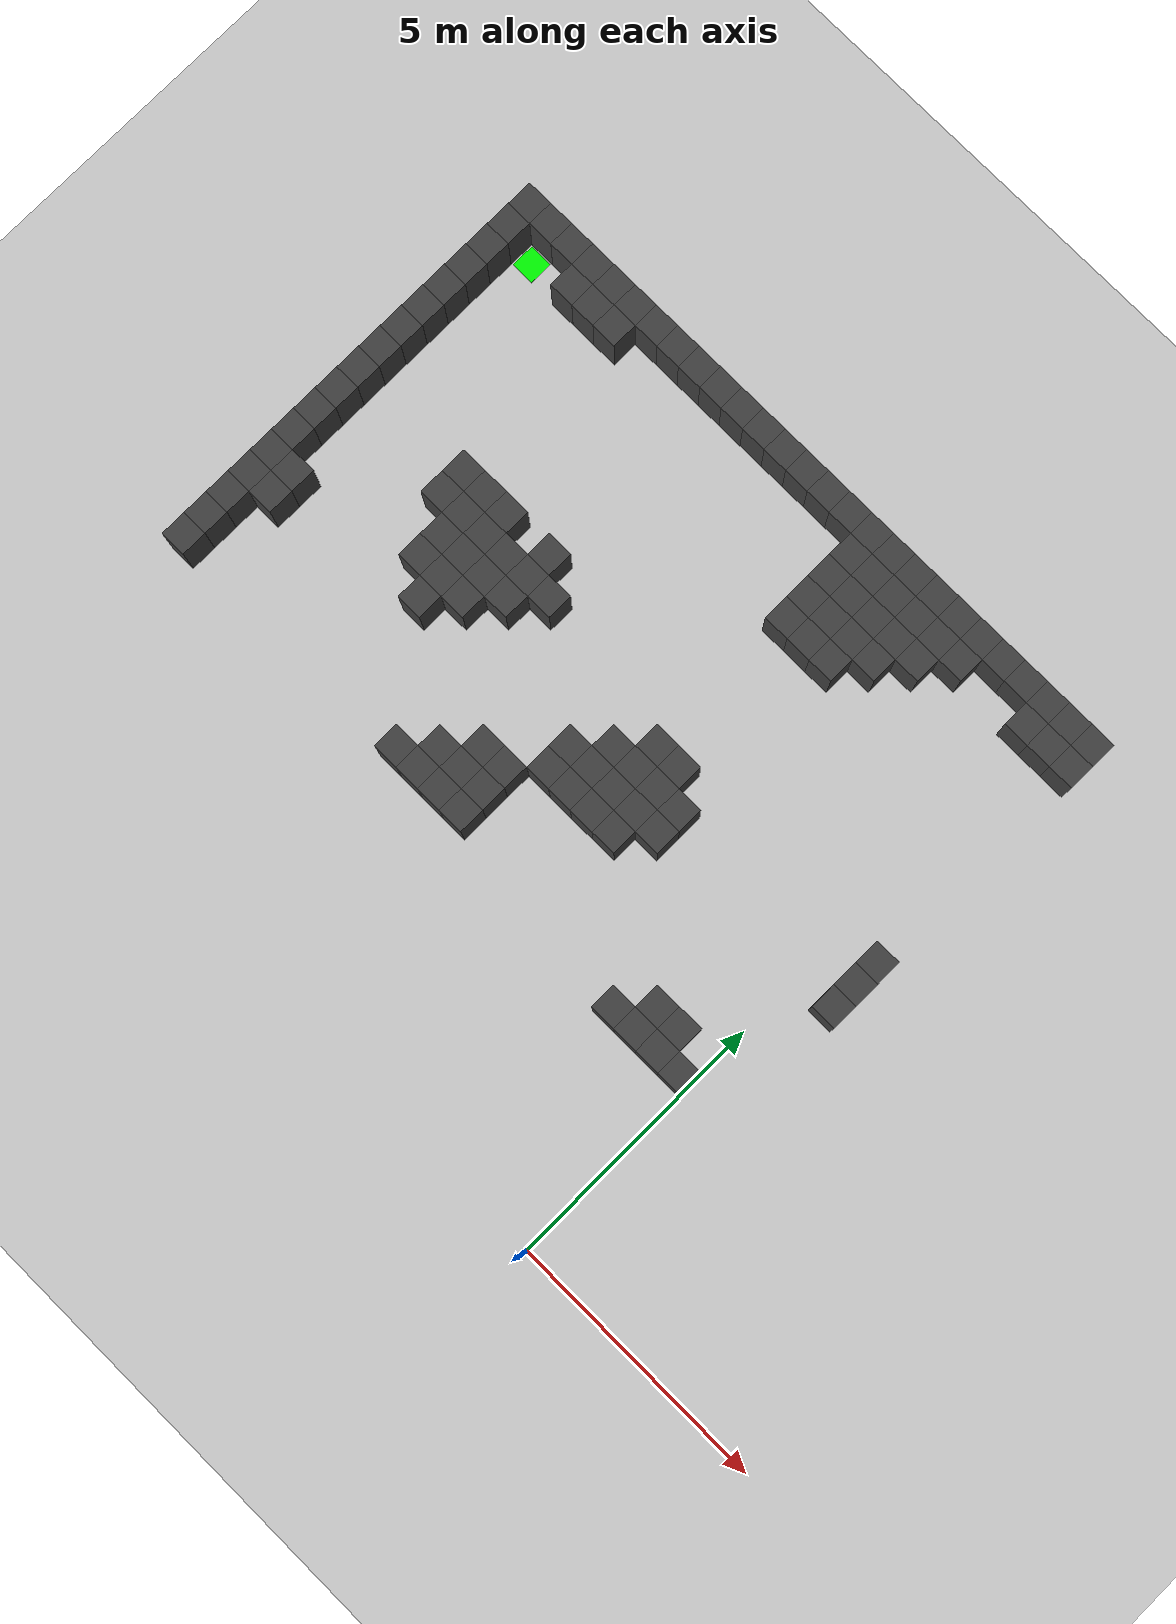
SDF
<sdf version="1.7">
 <world name="map_8661">
  <model name="ground_plane">
   <static>true</static>
   <link name="link">
    <collision name="collision">
     <geometry><plane><normal>0 0 1</normal><size>200 200</size></plane></geometry>
    </collision>
    <visual name="visual">
     <geometry><plane><normal>0 0 1</normal><size>200 200</size></plane></geometry>
     <material><ambient>0.8 0.8 0.8 1</ambient><diffuse>0.8 0.8 0.8 1</diffuse></material>
    </visual>
   </link>
  </model>
  <model name="maze_environment">
   <static>true</static>
   <link name="wall_0">
    <pose>-12.250 12.250 0.500 0 0 0</pose>
    <collision name="col"><geometry><box><size>0.5 0.5 1.0</size></box></geometry></collision>
    <visual name="vis">
     <geometry><box><size>0.5 0.5 1.0</size></box></geometry>
     <material><ambient>0.15 0.15 0.15 1</ambient><diffuse>0.25 0.25 0.25 1</diffuse></material>
    </visual>
   </link>
   <link name="wall_1">
    <pose>-11.750 12.250 0.500 0 0 0</pose>
    <collision name="col"><geometry><box><size>0.5 0.5 1.0</size></box></geometry></collision>
    <visual name="vis">
     <geometry><box><size>0.5 0.5 1.0</size></box></geometry>
     <material><ambient>0.15 0.15 0.15 1</ambient><diffuse>0.25 0.25 0.25 1</diffuse></material>
    </visual>
   </link>
   <link name="wall_2">
    <pose>-11.250 12.250 0.500 0 0 0</pose>
    <collision name="col"><geometry><box><size>0.5 0.5 1.0</size></box></geometry></collision>
    <visual name="vis">
     <geometry><box><size>0.5 0.5 1.0</size></box></geometry>
     <material><ambient>0.15 0.15 0.15 1</ambient><diffuse>0.25 0.25 0.25 1</diffuse></material>
    </visual>
   </link>
   <link name="wall_3">
    <pose>-10.750 12.250 0.500 0 0 0</pose>
    <collision name="col"><geometry><box><size>0.5 0.5 1.0</size></box></geometry></collision>
    <visual name="vis">
     <geometry><box><size>0.5 0.5 1.0</size></box></geometry>
     <material><ambient>0.15 0.15 0.15 1</ambient><diffuse>0.25 0.25 0.25 1</diffuse></material>
    </visual>
   </link>
   <link name="wall_4">
    <pose>-10.250 12.250 0.500 0 0 0</pose>
    <collision name="col"><geometry><box><size>0.5 0.5 1.0</size></box></geometry></collision>
    <visual name="vis">
     <geometry><box><size>0.5 0.5 1.0</size></box></geometry>
     <material><ambient>0.15 0.15 0.15 1</ambient><diffuse>0.25 0.25 0.25 1</diffuse></material>
    </visual>
   </link>
   <link name="wall_5">
    <pose>-9.750 12.250 0.500 0 0 0</pose>
    <collision name="col"><geometry><box><size>0.5 0.5 1.0</size></box></geometry></collision>
    <visual name="vis">
     <geometry><box><size>0.5 0.5 1.0</size></box></geometry>
     <material><ambient>0.15 0.15 0.15 1</ambient><diffuse>0.25 0.25 0.25 1</diffuse></material>
    </visual>
   </link>
   <link name="wall_6">
    <pose>-9.250 12.250 0.500 0 0 0</pose>
    <collision name="col"><geometry><box><size>0.5 0.5 1.0</size></box></geometry></collision>
    <visual name="vis">
     <geometry><box><size>0.5 0.5 1.0</size></box></geometry>
     <material><ambient>0.15 0.15 0.15 1</ambient><diffuse>0.25 0.25 0.25 1</diffuse></material>
    </visual>
   </link>
   <link name="wall_7">
    <pose>-8.750 12.250 0.500 0 0 0</pose>
    <collision name="col"><geometry><box><size>0.5 0.5 1.0</size></box></geometry></collision>
    <visual name="vis">
     <geometry><box><size>0.5 0.5 1.0</size></box></geometry>
     <material><ambient>0.15 0.15 0.15 1</ambient><diffuse>0.25 0.25 0.25 1</diffuse></material>
    </visual>
   </link>
   <link name="wall_8">
    <pose>-8.250 12.250 0.500 0 0 0</pose>
    <collision name="col"><geometry><box><size>0.5 0.5 1.0</size></box></geometry></collision>
    <visual name="vis">
     <geometry><box><size>0.5 0.5 1.0</size></box></geometry>
     <material><ambient>0.15 0.15 0.15 1</ambient><diffuse>0.25 0.25 0.25 1</diffuse></material>
    </visual>
   </link>
   <link name="wall_9">
    <pose>-7.750 12.250 0.500 0 0 0</pose>
    <collision name="col"><geometry><box><size>0.5 0.5 1.0</size></box></geometry></collision>
    <visual name="vis">
     <geometry><box><size>0.5 0.5 1.0</size></box></geometry>
     <material><ambient>0.15 0.15 0.15 1</ambient><diffuse>0.25 0.25 0.25 1</diffuse></material>
    </visual>
   </link>
   <link name="wall_10">
    <pose>-7.250 12.250 0.500 0 0 0</pose>
    <collision name="col"><geometry><box><size>0.5 0.5 1.0</size></box></geometry></collision>
    <visual name="vis">
     <geometry><box><size>0.5 0.5 1.0</size></box></geometry>
     <material><ambient>0.15 0.15 0.15 1</ambient><diffuse>0.25 0.25 0.25 1</diffuse></material>
    </visual>
   </link>
   <link name="wall_11">
    <pose>-6.750 12.250 0.500 0 0 0</pose>
    <collision name="col"><geometry><box><size>0.5 0.5 1.0</size></box></geometry></collision>
    <visual name="vis">
     <geometry><box><size>0.5 0.5 1.0</size></box></geometry>
     <material><ambient>0.15 0.15 0.15 1</ambient><diffuse>0.25 0.25 0.25 1</diffuse></material>
    </visual>
   </link>
   <link name="wall_12">
    <pose>-6.250 12.250 0.500 0 0 0</pose>
    <collision name="col"><geometry><box><size>0.5 0.5 1.0</size></box></geometry></collision>
    <visual name="vis">
     <geometry><box><size>0.5 0.5 1.0</size></box></geometry>
     <material><ambient>0.15 0.15 0.15 1</ambient><diffuse>0.25 0.25 0.25 1</diffuse></material>
    </visual>
   </link>
   <link name="wall_13">
    <pose>-5.750 12.250 0.500 0 0 0</pose>
    <collision name="col"><geometry><box><size>0.5 0.5 1.0</size></box></geometry></collision>
    <visual name="vis">
     <geometry><box><size>0.5 0.5 1.0</size></box></geometry>
     <material><ambient>0.15 0.15 0.15 1</ambient><diffuse>0.25 0.25 0.25 1</diffuse></material>
    </visual>
   </link>
   <link name="wall_14">
    <pose>-5.250 12.250 0.500 0 0 0</pose>
    <collision name="col"><geometry><box><size>0.5 0.5 1.0</size></box></geometry></collision>
    <visual name="vis">
     <geometry><box><size>0.5 0.5 1.0</size></box></geometry>
     <material><ambient>0.15 0.15 0.15 1</ambient><diffuse>0.25 0.25 0.25 1</diffuse></material>
    </visual>
   </link>
   <link name="wall_15">
    <pose>-4.750 12.250 0.500 0 0 0</pose>
    <collision name="col"><geometry><box><size>0.5 0.5 1.0</size></box></geometry></collision>
    <visual name="vis">
     <geometry><box><size>0.5 0.5 1.0</size></box></geometry>
     <material><ambient>0.15 0.15 0.15 1</ambient><diffuse>0.25 0.25 0.25 1</diffuse></material>
    </visual>
   </link>
   <link name="wall_16">
    <pose>-4.250 12.250 0.500 0 0 0</pose>
    <collision name="col"><geometry><box><size>0.5 0.5 1.0</size></box></geometry></collision>
    <visual name="vis">
     <geometry><box><size>0.5 0.5 1.0</size></box></geometry>
     <material><ambient>0.15 0.15 0.15 1</ambient><diffuse>0.25 0.25 0.25 1</diffuse></material>
    </visual>
   </link>
   <link name="wall_17">
    <pose>-3.750 12.250 0.500 0 0 0</pose>
    <collision name="col"><geometry><box><size>0.5 0.5 1.0</size></box></geometry></collision>
    <visual name="vis">
     <geometry><box><size>0.5 0.5 1.0</size></box></geometry>
     <material><ambient>0.15 0.15 0.15 1</ambient><diffuse>0.25 0.25 0.25 1</diffuse></material>
    </visual>
   </link>
   <link name="wall_18">
    <pose>-3.250 12.250 0.500 0 0 0</pose>
    <collision name="col"><geometry><box><size>0.5 0.5 1.0</size></box></geometry></collision>
    <visual name="vis">
     <geometry><box><size>0.5 0.5 1.0</size></box></geometry>
     <material><ambient>0.15 0.15 0.15 1</ambient><diffuse>0.25 0.25 0.25 1</diffuse></material>
    </visual>
   </link>
   <link name="wall_19">
    <pose>-2.750 12.250 0.500 0 0 0</pose>
    <collision name="col"><geometry><box><size>0.5 0.5 1.0</size></box></geometry></collision>
    <visual name="vis">
     <geometry><box><size>0.5 0.5 1.0</size></box></geometry>
     <material><ambient>0.15 0.15 0.15 1</ambient><diffuse>0.25 0.25 0.25 1</diffuse></material>
    </visual>
   </link>
   <link name="wall_20">
    <pose>-2.250 12.250 0.500 0 0 0</pose>
    <collision name="col"><geometry><box><size>0.5 0.5 1.0</size></box></geometry></collision>
    <visual name="vis">
     <geometry><box><size>0.5 0.5 1.0</size></box></geometry>
     <material><ambient>0.15 0.15 0.15 1</ambient><diffuse>0.25 0.25 0.25 1</diffuse></material>
    </visual>
   </link>
   <link name="wall_21">
    <pose>-1.750 12.250 0.500 0 0 0</pose>
    <collision name="col"><geometry><box><size>0.5 0.5 1.0</size></box></geometry></collision>
    <visual name="vis">
     <geometry><box><size>0.5 0.5 1.0</size></box></geometry>
     <material><ambient>0.15 0.15 0.15 1</ambient><diffuse>0.25 0.25 0.25 1</diffuse></material>
    </visual>
   </link>
   <link name="wall_22">
    <pose>-1.250 12.250 0.500 0 0 0</pose>
    <collision name="col"><geometry><box><size>0.5 0.5 1.0</size></box></geometry></collision>
    <visual name="vis">
     <geometry><box><size>0.5 0.5 1.0</size></box></geometry>
     <material><ambient>0.15 0.15 0.15 1</ambient><diffuse>0.25 0.25 0.25 1</diffuse></material>
    </visual>
   </link>
   <link name="wall_23">
    <pose>-0.750 12.250 0.500 0 0 0</pose>
    <collision name="col"><geometry><box><size>0.5 0.5 1.0</size></box></geometry></collision>
    <visual name="vis">
     <geometry><box><size>0.5 0.5 1.0</size></box></geometry>
     <material><ambient>0.15 0.15 0.15 1</ambient><diffuse>0.25 0.25 0.25 1</diffuse></material>
    </visual>
   </link>
   <link name="wall_24">
    <pose>-0.250 12.250 0.500 0 0 0</pose>
    <collision name="col"><geometry><box><size>0.5 0.5 1.0</size></box></geometry></collision>
    <visual name="vis">
     <geometry><box><size>0.5 0.5 1.0</size></box></geometry>
     <material><ambient>0.15 0.15 0.15 1</ambient><diffuse>0.25 0.25 0.25 1</diffuse></material>
    </visual>
   </link>
   <link name="wall_25">
    <pose>0.250 12.250 0.500 0 0 0</pose>
    <collision name="col"><geometry><box><size>0.5 0.5 1.0</size></box></geometry></collision>
    <visual name="vis">
     <geometry><box><size>0.5 0.5 1.0</size></box></geometry>
     <material><ambient>0.15 0.15 0.15 1</ambient><diffuse>0.25 0.25 0.25 1</diffuse></material>
    </visual>
   </link>
   <link name="wall_26">
    <pose>0.750 12.250 0.500 0 0 0</pose>
    <collision name="col"><geometry><box><size>0.5 0.5 1.0</size></box></geometry></collision>
    <visual name="vis">
     <geometry><box><size>0.5 0.5 1.0</size></box></geometry>
     <material><ambient>0.15 0.15 0.15 1</ambient><diffuse>0.25 0.25 0.25 1</diffuse></material>
    </visual>
   </link>
   <link name="wall_50">
    <pose>-12.250 11.750 0.500 0 0 0</pose>
    <collision name="col"><geometry><box><size>0.5 0.5 1.0</size></box></geometry></collision>
    <visual name="vis">
     <geometry><box><size>0.5 0.5 1.0</size></box></geometry>
     <material><ambient>0.15 0.15 0.15 1</ambient><diffuse>0.25 0.25 0.25 1</diffuse></material>
    </visual>
   </link>
   <link name="wall_51">
    <pose>-10.750 11.750 0.500 0 0 0</pose>
    <collision name="col"><geometry><box><size>0.5 0.5 1.0</size></box></geometry></collision>
    <visual name="vis">
     <geometry><box><size>0.5 0.5 1.0</size></box></geometry>
     <material><ambient>0.15 0.15 0.15 1</ambient><diffuse>0.25 0.25 0.25 1</diffuse></material>
    </visual>
   </link>
   <link name="wall_52">
    <pose>-10.250 11.750 0.500 0 0 0</pose>
    <collision name="col"><geometry><box><size>0.5 0.5 1.0</size></box></geometry></collision>
    <visual name="vis">
     <geometry><box><size>0.5 0.5 1.0</size></box></geometry>
     <material><ambient>0.15 0.15 0.15 1</ambient><diffuse>0.25 0.25 0.25 1</diffuse></material>
    </visual>
   </link>
   <link name="wall_53">
    <pose>-9.750 11.750 0.500 0 0 0</pose>
    <collision name="col"><geometry><box><size>0.5 0.5 1.0</size></box></geometry></collision>
    <visual name="vis">
     <geometry><box><size>0.5 0.5 1.0</size></box></geometry>
     <material><ambient>0.15 0.15 0.15 1</ambient><diffuse>0.25 0.25 0.25 1</diffuse></material>
    </visual>
   </link>
   <link name="wall_54">
    <pose>-4.250 11.750 0.500 0 0 0</pose>
    <collision name="col"><geometry><box><size>0.5 0.5 1.0</size></box></geometry></collision>
    <visual name="vis">
     <geometry><box><size>0.5 0.5 1.0</size></box></geometry>
     <material><ambient>0.15 0.15 0.15 1</ambient><diffuse>0.25 0.25 0.25 1</diffuse></material>
    </visual>
   </link>
   <link name="wall_55">
    <pose>-3.750 11.750 0.500 0 0 0</pose>
    <collision name="col"><geometry><box><size>0.5 0.5 1.0</size></box></geometry></collision>
    <visual name="vis">
     <geometry><box><size>0.5 0.5 1.0</size></box></geometry>
     <material><ambient>0.15 0.15 0.15 1</ambient><diffuse>0.25 0.25 0.25 1</diffuse></material>
    </visual>
   </link>
   <link name="wall_56">
    <pose>-3.250 11.750 0.500 0 0 0</pose>
    <collision name="col"><geometry><box><size>0.5 0.5 1.0</size></box></geometry></collision>
    <visual name="vis">
     <geometry><box><size>0.5 0.5 1.0</size></box></geometry>
     <material><ambient>0.15 0.15 0.15 1</ambient><diffuse>0.25 0.25 0.25 1</diffuse></material>
    </visual>
   </link>
   <link name="wall_57">
    <pose>-2.750 11.750 0.500 0 0 0</pose>
    <collision name="col"><geometry><box><size>0.5 0.5 1.0</size></box></geometry></collision>
    <visual name="vis">
     <geometry><box><size>0.5 0.5 1.0</size></box></geometry>
     <material><ambient>0.15 0.15 0.15 1</ambient><diffuse>0.25 0.25 0.25 1</diffuse></material>
    </visual>
   </link>
   <link name="wall_58">
    <pose>-2.250 11.750 0.500 0 0 0</pose>
    <collision name="col"><geometry><box><size>0.5 0.5 1.0</size></box></geometry></collision>
    <visual name="vis">
     <geometry><box><size>0.5 0.5 1.0</size></box></geometry>
     <material><ambient>0.15 0.15 0.15 1</ambient><diffuse>0.25 0.25 0.25 1</diffuse></material>
    </visual>
   </link>
   <link name="wall_59">
    <pose>-1.750 11.750 0.500 0 0 0</pose>
    <collision name="col"><geometry><box><size>0.5 0.5 1.0</size></box></geometry></collision>
    <visual name="vis">
     <geometry><box><size>0.5 0.5 1.0</size></box></geometry>
     <material><ambient>0.15 0.15 0.15 1</ambient><diffuse>0.25 0.25 0.25 1</diffuse></material>
    </visual>
   </link>
   <link name="wall_60">
    <pose>-0.250 11.750 0.500 0 0 0</pose>
    <collision name="col"><geometry><box><size>0.5 0.5 1.0</size></box></geometry></collision>
    <visual name="vis">
     <geometry><box><size>0.5 0.5 1.0</size></box></geometry>
     <material><ambient>0.15 0.15 0.15 1</ambient><diffuse>0.25 0.25 0.25 1</diffuse></material>
    </visual>
   </link>
   <link name="wall_61">
    <pose>0.250 11.750 0.500 0 0 0</pose>
    <collision name="col"><geometry><box><size>0.5 0.5 1.0</size></box></geometry></collision>
    <visual name="vis">
     <geometry><box><size>0.5 0.5 1.0</size></box></geometry>
     <material><ambient>0.15 0.15 0.15 1</ambient><diffuse>0.25 0.25 0.25 1</diffuse></material>
    </visual>
   </link>
   <link name="wall_62">
    <pose>0.750 11.750 0.500 0 0 0</pose>
    <collision name="col"><geometry><box><size>0.5 0.5 1.0</size></box></geometry></collision>
    <visual name="vis">
     <geometry><box><size>0.5 0.5 1.0</size></box></geometry>
     <material><ambient>0.15 0.15 0.15 1</ambient><diffuse>0.25 0.25 0.25 1</diffuse></material>
    </visual>
   </link>
   <link name="wall_68">
    <pose>-12.250 11.250 0.500 0 0 0</pose>
    <collision name="col"><geometry><box><size>0.5 0.5 1.0</size></box></geometry></collision>
    <visual name="vis">
     <geometry><box><size>0.5 0.5 1.0</size></box></geometry>
     <material><ambient>0.15 0.15 0.15 1</ambient><diffuse>0.25 0.25 0.25 1</diffuse></material>
    </visual>
   </link>
   <link name="wall_69">
    <pose>-4.250 11.250 0.500 0 0 0</pose>
    <collision name="col"><geometry><box><size>0.5 0.5 1.0</size></box></geometry></collision>
    <visual name="vis">
     <geometry><box><size>0.5 0.5 1.0</size></box></geometry>
     <material><ambient>0.15 0.15 0.15 1</ambient><diffuse>0.25 0.25 0.25 1</diffuse></material>
    </visual>
   </link>
   <link name="wall_70">
    <pose>-3.750 11.250 0.500 0 0 0</pose>
    <collision name="col"><geometry><box><size>0.5 0.5 1.0</size></box></geometry></collision>
    <visual name="vis">
     <geometry><box><size>0.5 0.5 1.0</size></box></geometry>
     <material><ambient>0.15 0.15 0.15 1</ambient><diffuse>0.25 0.25 0.25 1</diffuse></material>
    </visual>
   </link>
   <link name="wall_71">
    <pose>-3.250 11.250 0.500 0 0 0</pose>
    <collision name="col"><geometry><box><size>0.5 0.5 1.0</size></box></geometry></collision>
    <visual name="vis">
     <geometry><box><size>0.5 0.5 1.0</size></box></geometry>
     <material><ambient>0.15 0.15 0.15 1</ambient><diffuse>0.25 0.25 0.25 1</diffuse></material>
    </visual>
   </link>
   <link name="wall_72">
    <pose>-2.750 11.250 0.500 0 0 0</pose>
    <collision name="col"><geometry><box><size>0.5 0.5 1.0</size></box></geometry></collision>
    <visual name="vis">
     <geometry><box><size>0.5 0.5 1.0</size></box></geometry>
     <material><ambient>0.15 0.15 0.15 1</ambient><diffuse>0.25 0.25 0.25 1</diffuse></material>
    </visual>
   </link>
   <link name="wall_73">
    <pose>-2.250 11.250 0.500 0 0 0</pose>
    <collision name="col"><geometry><box><size>0.5 0.5 1.0</size></box></geometry></collision>
    <visual name="vis">
     <geometry><box><size>0.5 0.5 1.0</size></box></geometry>
     <material><ambient>0.15 0.15 0.15 1</ambient><diffuse>0.25 0.25 0.25 1</diffuse></material>
    </visual>
   </link>
   <link name="wall_76">
    <pose>-12.250 10.750 0.500 0 0 0</pose>
    <collision name="col"><geometry><box><size>0.5 0.5 1.0</size></box></geometry></collision>
    <visual name="vis">
     <geometry><box><size>0.5 0.5 1.0</size></box></geometry>
     <material><ambient>0.15 0.15 0.15 1</ambient><diffuse>0.25 0.25 0.25 1</diffuse></material>
    </visual>
   </link>
   <link name="wall_77">
    <pose>-4.250 10.750 0.500 0 0 0</pose>
    <collision name="col"><geometry><box><size>0.5 0.5 1.0</size></box></geometry></collision>
    <visual name="vis">
     <geometry><box><size>0.5 0.5 1.0</size></box></geometry>
     <material><ambient>0.15 0.15 0.15 1</ambient><diffuse>0.25 0.25 0.25 1</diffuse></material>
    </visual>
   </link>
   <link name="wall_78">
    <pose>-3.750 10.750 0.500 0 0 0</pose>
    <collision name="col"><geometry><box><size>0.5 0.5 1.0</size></box></geometry></collision>
    <visual name="vis">
     <geometry><box><size>0.5 0.5 1.0</size></box></geometry>
     <material><ambient>0.15 0.15 0.15 1</ambient><diffuse>0.25 0.25 0.25 1</diffuse></material>
    </visual>
   </link>
   <link name="wall_79">
    <pose>-3.250 10.750 0.500 0 0 0</pose>
    <collision name="col"><geometry><box><size>0.5 0.5 1.0</size></box></geometry></collision>
    <visual name="vis">
     <geometry><box><size>0.5 0.5 1.0</size></box></geometry>
     <material><ambient>0.15 0.15 0.15 1</ambient><diffuse>0.25 0.25 0.25 1</diffuse></material>
    </visual>
   </link>
   <link name="wall_80">
    <pose>-2.750 10.750 0.500 0 0 0</pose>
    <collision name="col"><geometry><box><size>0.5 0.5 1.0</size></box></geometry></collision>
    <visual name="vis">
     <geometry><box><size>0.5 0.5 1.0</size></box></geometry>
     <material><ambient>0.15 0.15 0.15 1</ambient><diffuse>0.25 0.25 0.25 1</diffuse></material>
    </visual>
   </link>
   <link name="wall_83">
    <pose>-12.250 10.250 0.500 0 0 0</pose>
    <collision name="col"><geometry><box><size>0.5 0.5 1.0</size></box></geometry></collision>
    <visual name="vis">
     <geometry><box><size>0.5 0.5 1.0</size></box></geometry>
     <material><ambient>0.15 0.15 0.15 1</ambient><diffuse>0.25 0.25 0.25 1</diffuse></material>
    </visual>
   </link>
   <link name="wall_84">
    <pose>-4.250 10.250 0.500 0 0 0</pose>
    <collision name="col"><geometry><box><size>0.5 0.5 1.0</size></box></geometry></collision>
    <visual name="vis">
     <geometry><box><size>0.5 0.5 1.0</size></box></geometry>
     <material><ambient>0.15 0.15 0.15 1</ambient><diffuse>0.25 0.25 0.25 1</diffuse></material>
    </visual>
   </link>
   <link name="wall_85">
    <pose>-3.750 10.250 0.500 0 0 0</pose>
    <collision name="col"><geometry><box><size>0.5 0.5 1.0</size></box></geometry></collision>
    <visual name="vis">
     <geometry><box><size>0.5 0.5 1.0</size></box></geometry>
     <material><ambient>0.15 0.15 0.15 1</ambient><diffuse>0.25 0.25 0.25 1</diffuse></material>
    </visual>
   </link>
   <link name="wall_86">
    <pose>-3.250 10.250 0.500 0 0 0</pose>
    <collision name="col"><geometry><box><size>0.5 0.5 1.0</size></box></geometry></collision>
    <visual name="vis">
     <geometry><box><size>0.5 0.5 1.0</size></box></geometry>
     <material><ambient>0.15 0.15 0.15 1</ambient><diffuse>0.25 0.25 0.25 1</diffuse></material>
    </visual>
   </link>
   <link name="wall_89">
    <pose>-12.250 9.750 0.500 0 0 0</pose>
    <collision name="col"><geometry><box><size>0.5 0.5 1.0</size></box></geometry></collision>
    <visual name="vis">
     <geometry><box><size>0.5 0.5 1.0</size></box></geometry>
     <material><ambient>0.15 0.15 0.15 1</ambient><diffuse>0.25 0.25 0.25 1</diffuse></material>
    </visual>
   </link>
   <link name="wall_92">
    <pose>-12.250 9.250 0.500 0 0 0</pose>
    <collision name="col"><geometry><box><size>0.5 0.5 1.0</size></box></geometry></collision>
    <visual name="vis">
     <geometry><box><size>0.5 0.5 1.0</size></box></geometry>
     <material><ambient>0.15 0.15 0.15 1</ambient><diffuse>0.25 0.25 0.25 1</diffuse></material>
    </visual>
   </link>
   <link name="wall_95">
    <pose>-12.250 8.750 0.500 0 0 0</pose>
    <collision name="col"><geometry><box><size>0.5 0.5 1.0</size></box></geometry></collision>
    <visual name="vis">
     <geometry><box><size>0.5 0.5 1.0</size></box></geometry>
     <material><ambient>0.15 0.15 0.15 1</ambient><diffuse>0.25 0.25 0.25 1</diffuse></material>
    </visual>
   </link>
   <link name="wall_99">
    <pose>-12.250 8.250 0.500 0 0 0</pose>
    <collision name="col"><geometry><box><size>0.5 0.5 1.0</size></box></geometry></collision>
    <visual name="vis">
     <geometry><box><size>0.5 0.5 1.0</size></box></geometry>
     <material><ambient>0.15 0.15 0.15 1</ambient><diffuse>0.25 0.25 0.25 1</diffuse></material>
    </visual>
   </link>
   <link name="wall_100">
    <pose>-9.750 8.250 0.500 0 0 0</pose>
    <collision name="col"><geometry><box><size>0.5 0.5 1.0</size></box></geometry></collision>
    <visual name="vis">
     <geometry><box><size>0.5 0.5 1.0</size></box></geometry>
     <material><ambient>0.15 0.15 0.15 1</ambient><diffuse>0.25 0.25 0.25 1</diffuse></material>
    </visual>
   </link>
   <link name="wall_101">
    <pose>-9.250 8.250 0.500 0 0 0</pose>
    <collision name="col"><geometry><box><size>0.5 0.5 1.0</size></box></geometry></collision>
    <visual name="vis">
     <geometry><box><size>0.5 0.5 1.0</size></box></geometry>
     <material><ambient>0.15 0.15 0.15 1</ambient><diffuse>0.25 0.25 0.25 1</diffuse></material>
    </visual>
   </link>
   <link name="wall_102">
    <pose>-8.750 8.250 0.500 0 0 0</pose>
    <collision name="col"><geometry><box><size>0.5 0.5 1.0</size></box></geometry></collision>
    <visual name="vis">
     <geometry><box><size>0.5 0.5 1.0</size></box></geometry>
     <material><ambient>0.15 0.15 0.15 1</ambient><diffuse>0.25 0.25 0.25 1</diffuse></material>
    </visual>
   </link>
   <link name="wall_103">
    <pose>-7.750 8.250 0.500 0 0 0</pose>
    <collision name="col"><geometry><box><size>0.5 0.5 1.0</size></box></geometry></collision>
    <visual name="vis">
     <geometry><box><size>0.5 0.5 1.0</size></box></geometry>
     <material><ambient>0.15 0.15 0.15 1</ambient><diffuse>0.25 0.25 0.25 1</diffuse></material>
    </visual>
   </link>
   <link name="wall_108">
    <pose>-12.250 7.750 0.500 0 0 0</pose>
    <collision name="col"><geometry><box><size>0.5 0.5 1.0</size></box></geometry></collision>
    <visual name="vis">
     <geometry><box><size>0.5 0.5 1.0</size></box></geometry>
     <material><ambient>0.15 0.15 0.15 1</ambient><diffuse>0.25 0.25 0.25 1</diffuse></material>
    </visual>
   </link>
   <link name="wall_109">
    <pose>-9.750 7.750 0.500 0 0 0</pose>
    <collision name="col"><geometry><box><size>0.5 0.5 1.0</size></box></geometry></collision>
    <visual name="vis">
     <geometry><box><size>0.5 0.5 1.0</size></box></geometry>
     <material><ambient>0.15 0.15 0.15 1</ambient><diffuse>0.25 0.25 0.25 1</diffuse></material>
    </visual>
   </link>
   <link name="wall_110">
    <pose>-9.250 7.750 0.500 0 0 0</pose>
    <collision name="col"><geometry><box><size>0.5 0.5 1.0</size></box></geometry></collision>
    <visual name="vis">
     <geometry><box><size>0.5 0.5 1.0</size></box></geometry>
     <material><ambient>0.15 0.15 0.15 1</ambient><diffuse>0.25 0.25 0.25 1</diffuse></material>
    </visual>
   </link>
   <link name="wall_111">
    <pose>-8.750 7.750 0.500 0 0 0</pose>
    <collision name="col"><geometry><box><size>0.5 0.5 1.0</size></box></geometry></collision>
    <visual name="vis">
     <geometry><box><size>0.5 0.5 1.0</size></box></geometry>
     <material><ambient>0.15 0.15 0.15 1</ambient><diffuse>0.25 0.25 0.25 1</diffuse></material>
    </visual>
   </link>
   <link name="wall_112">
    <pose>-8.250 7.750 0.500 0 0 0</pose>
    <collision name="col"><geometry><box><size>0.5 0.5 1.0</size></box></geometry></collision>
    <visual name="vis">
     <geometry><box><size>0.5 0.5 1.0</size></box></geometry>
     <material><ambient>0.15 0.15 0.15 1</ambient><diffuse>0.25 0.25 0.25 1</diffuse></material>
    </visual>
   </link>
   <link name="wall_113">
    <pose>-7.750 7.750 0.500 0 0 0</pose>
    <collision name="col"><geometry><box><size>0.5 0.5 1.0</size></box></geometry></collision>
    <visual name="vis">
     <geometry><box><size>0.5 0.5 1.0</size></box></geometry>
     <material><ambient>0.15 0.15 0.15 1</ambient><diffuse>0.25 0.25 0.25 1</diffuse></material>
    </visual>
   </link>
   <link name="wall_114">
    <pose>-7.250 7.750 0.500 0 0 0</pose>
    <collision name="col"><geometry><box><size>0.5 0.5 1.0</size></box></geometry></collision>
    <visual name="vis">
     <geometry><box><size>0.5 0.5 1.0</size></box></geometry>
     <material><ambient>0.15 0.15 0.15 1</ambient><diffuse>0.25 0.25 0.25 1</diffuse></material>
    </visual>
   </link>
   <link name="wall_124">
    <pose>-12.250 7.250 0.500 0 0 0</pose>
    <collision name="col"><geometry><box><size>0.5 0.5 1.0</size></box></geometry></collision>
    <visual name="vis">
     <geometry><box><size>0.5 0.5 1.0</size></box></geometry>
     <material><ambient>0.15 0.15 0.15 1</ambient><diffuse>0.25 0.25 0.25 1</diffuse></material>
    </visual>
   </link>
   <link name="wall_125">
    <pose>-9.250 7.250 0.500 0 0 0</pose>
    <collision name="col"><geometry><box><size>0.5 0.5 1.0</size></box></geometry></collision>
    <visual name="vis">
     <geometry><box><size>0.5 0.5 1.0</size></box></geometry>
     <material><ambient>0.15 0.15 0.15 1</ambient><diffuse>0.25 0.25 0.25 1</diffuse></material>
    </visual>
   </link>
   <link name="wall_126">
    <pose>-8.750 7.250 0.500 0 0 0</pose>
    <collision name="col"><geometry><box><size>0.5 0.5 1.0</size></box></geometry></collision>
    <visual name="vis">
     <geometry><box><size>0.5 0.5 1.0</size></box></geometry>
     <material><ambient>0.15 0.15 0.15 1</ambient><diffuse>0.25 0.25 0.25 1</diffuse></material>
    </visual>
   </link>
   <link name="wall_127">
    <pose>-8.250 7.250 0.500 0 0 0</pose>
    <collision name="col"><geometry><box><size>0.5 0.5 1.0</size></box></geometry></collision>
    <visual name="vis">
     <geometry><box><size>0.5 0.5 1.0</size></box></geometry>
     <material><ambient>0.15 0.15 0.15 1</ambient><diffuse>0.25 0.25 0.25 1</diffuse></material>
    </visual>
   </link>
   <link name="wall_128">
    <pose>-7.750 7.250 0.500 0 0 0</pose>
    <collision name="col"><geometry><box><size>0.5 0.5 1.0</size></box></geometry></collision>
    <visual name="vis">
     <geometry><box><size>0.5 0.5 1.0</size></box></geometry>
     <material><ambient>0.15 0.15 0.15 1</ambient><diffuse>0.25 0.25 0.25 1</diffuse></material>
    </visual>
   </link>
   <link name="wall_129">
    <pose>-4.250 7.250 0.500 0 0 0</pose>
    <collision name="col"><geometry><box><size>0.5 0.5 1.0</size></box></geometry></collision>
    <visual name="vis">
     <geometry><box><size>0.5 0.5 1.0</size></box></geometry>
     <material><ambient>0.15 0.15 0.15 1</ambient><diffuse>0.25 0.25 0.25 1</diffuse></material>
    </visual>
   </link>
   <link name="wall_130">
    <pose>-3.750 7.250 0.500 0 0 0</pose>
    <collision name="col"><geometry><box><size>0.5 0.5 1.0</size></box></geometry></collision>
    <visual name="vis">
     <geometry><box><size>0.5 0.5 1.0</size></box></geometry>
     <material><ambient>0.15 0.15 0.15 1</ambient><diffuse>0.25 0.25 0.25 1</diffuse></material>
    </visual>
   </link>
   <link name="wall_131">
    <pose>0.750 7.250 0.500 0 0 0</pose>
    <collision name="col"><geometry><box><size>0.5 0.5 1.0</size></box></geometry></collision>
    <visual name="vis">
     <geometry><box><size>0.5 0.5 1.0</size></box></geometry>
     <material><ambient>0.15 0.15 0.15 1</ambient><diffuse>0.25 0.25 0.25 1</diffuse></material>
    </visual>
   </link>
   <link name="wall_143">
    <pose>-12.250 6.750 0.500 0 0 0</pose>
    <collision name="col"><geometry><box><size>0.5 0.5 1.0</size></box></geometry></collision>
    <visual name="vis">
     <geometry><box><size>0.5 0.5 1.0</size></box></geometry>
     <material><ambient>0.15 0.15 0.15 1</ambient><diffuse>0.25 0.25 0.25 1</diffuse></material>
    </visual>
   </link>
   <link name="wall_144">
    <pose>-9.250 6.750 0.500 0 0 0</pose>
    <collision name="col"><geometry><box><size>0.5 0.5 1.0</size></box></geometry></collision>
    <visual name="vis">
     <geometry><box><size>0.5 0.5 1.0</size></box></geometry>
     <material><ambient>0.15 0.15 0.15 1</ambient><diffuse>0.25 0.25 0.25 1</diffuse></material>
    </visual>
   </link>
   <link name="wall_145">
    <pose>-8.750 6.750 0.500 0 0 0</pose>
    <collision name="col"><geometry><box><size>0.5 0.5 1.0</size></box></geometry></collision>
    <visual name="vis">
     <geometry><box><size>0.5 0.5 1.0</size></box></geometry>
     <material><ambient>0.15 0.15 0.15 1</ambient><diffuse>0.25 0.25 0.25 1</diffuse></material>
    </visual>
   </link>
   <link name="wall_146">
    <pose>-8.250 6.750 0.500 0 0 0</pose>
    <collision name="col"><geometry><box><size>0.5 0.5 1.0</size></box></geometry></collision>
    <visual name="vis">
     <geometry><box><size>0.5 0.5 1.0</size></box></geometry>
     <material><ambient>0.15 0.15 0.15 1</ambient><diffuse>0.25 0.25 0.25 1</diffuse></material>
    </visual>
   </link>
   <link name="wall_147">
    <pose>-4.750 6.750 0.500 0 0 0</pose>
    <collision name="col"><geometry><box><size>0.5 0.5 1.0</size></box></geometry></collision>
    <visual name="vis">
     <geometry><box><size>0.5 0.5 1.0</size></box></geometry>
     <material><ambient>0.15 0.15 0.15 1</ambient><diffuse>0.25 0.25 0.25 1</diffuse></material>
    </visual>
   </link>
   <link name="wall_148">
    <pose>-4.250 6.750 0.500 0 0 0</pose>
    <collision name="col"><geometry><box><size>0.5 0.5 1.0</size></box></geometry></collision>
    <visual name="vis">
     <geometry><box><size>0.5 0.5 1.0</size></box></geometry>
     <material><ambient>0.15 0.15 0.15 1</ambient><diffuse>0.25 0.25 0.25 1</diffuse></material>
    </visual>
   </link>
   <link name="wall_149">
    <pose>-3.750 6.750 0.500 0 0 0</pose>
    <collision name="col"><geometry><box><size>0.5 0.5 1.0</size></box></geometry></collision>
    <visual name="vis">
     <geometry><box><size>0.5 0.5 1.0</size></box></geometry>
     <material><ambient>0.15 0.15 0.15 1</ambient><diffuse>0.25 0.25 0.25 1</diffuse></material>
    </visual>
   </link>
   <link name="wall_150">
    <pose>-3.250 6.750 0.500 0 0 0</pose>
    <collision name="col"><geometry><box><size>0.5 0.5 1.0</size></box></geometry></collision>
    <visual name="vis">
     <geometry><box><size>0.5 0.5 1.0</size></box></geometry>
     <material><ambient>0.15 0.15 0.15 1</ambient><diffuse>0.25 0.25 0.25 1</diffuse></material>
    </visual>
   </link>
   <link name="wall_151">
    <pose>0.750 6.750 0.500 0 0 0</pose>
    <collision name="col"><geometry><box><size>0.5 0.5 1.0</size></box></geometry></collision>
    <visual name="vis">
     <geometry><box><size>0.5 0.5 1.0</size></box></geometry>
     <material><ambient>0.15 0.15 0.15 1</ambient><diffuse>0.25 0.25 0.25 1</diffuse></material>
    </visual>
   </link>
   <link name="wall_164">
    <pose>-12.250 6.250 0.500 0 0 0</pose>
    <collision name="col"><geometry><box><size>0.5 0.5 1.0</size></box></geometry></collision>
    <visual name="vis">
     <geometry><box><size>0.5 0.5 1.0</size></box></geometry>
     <material><ambient>0.15 0.15 0.15 1</ambient><diffuse>0.25 0.25 0.25 1</diffuse></material>
    </visual>
   </link>
   <link name="wall_165">
    <pose>-11.750 6.250 0.500 0 0 0</pose>
    <collision name="col"><geometry><box><size>0.5 0.5 1.0</size></box></geometry></collision>
    <visual name="vis">
     <geometry><box><size>0.5 0.5 1.0</size></box></geometry>
     <material><ambient>0.15 0.15 0.15 1</ambient><diffuse>0.25 0.25 0.25 1</diffuse></material>
    </visual>
   </link>
   <link name="wall_166">
    <pose>-8.750 6.250 0.500 0 0 0</pose>
    <collision name="col"><geometry><box><size>0.5 0.5 1.0</size></box></geometry></collision>
    <visual name="vis">
     <geometry><box><size>0.5 0.5 1.0</size></box></geometry>
     <material><ambient>0.15 0.15 0.15 1</ambient><diffuse>0.25 0.25 0.25 1</diffuse></material>
    </visual>
   </link>
   <link name="wall_167">
    <pose>-5.250 6.250 0.500 0 0 0</pose>
    <collision name="col"><geometry><box><size>0.5 0.5 1.0</size></box></geometry></collision>
    <visual name="vis">
     <geometry><box><size>0.5 0.5 1.0</size></box></geometry>
     <material><ambient>0.15 0.15 0.15 1</ambient><diffuse>0.25 0.25 0.25 1</diffuse></material>
    </visual>
   </link>
   <link name="wall_168">
    <pose>-4.750 6.250 0.500 0 0 0</pose>
    <collision name="col"><geometry><box><size>0.5 0.5 1.0</size></box></geometry></collision>
    <visual name="vis">
     <geometry><box><size>0.5 0.5 1.0</size></box></geometry>
     <material><ambient>0.15 0.15 0.15 1</ambient><diffuse>0.25 0.25 0.25 1</diffuse></material>
    </visual>
   </link>
   <link name="wall_169">
    <pose>-4.250 6.250 0.500 0 0 0</pose>
    <collision name="col"><geometry><box><size>0.5 0.5 1.0</size></box></geometry></collision>
    <visual name="vis">
     <geometry><box><size>0.5 0.5 1.0</size></box></geometry>
     <material><ambient>0.15 0.15 0.15 1</ambient><diffuse>0.25 0.25 0.25 1</diffuse></material>
    </visual>
   </link>
   <link name="wall_170">
    <pose>-3.750 6.250 0.500 0 0 0</pose>
    <collision name="col"><geometry><box><size>0.5 0.5 1.0</size></box></geometry></collision>
    <visual name="vis">
     <geometry><box><size>0.5 0.5 1.0</size></box></geometry>
     <material><ambient>0.15 0.15 0.15 1</ambient><diffuse>0.25 0.25 0.25 1</diffuse></material>
    </visual>
   </link>
   <link name="wall_171">
    <pose>-3.250 6.250 0.500 0 0 0</pose>
    <collision name="col"><geometry><box><size>0.5 0.5 1.0</size></box></geometry></collision>
    <visual name="vis">
     <geometry><box><size>0.5 0.5 1.0</size></box></geometry>
     <material><ambient>0.15 0.15 0.15 1</ambient><diffuse>0.25 0.25 0.25 1</diffuse></material>
    </visual>
   </link>
   <link name="wall_172">
    <pose>0.750 6.250 0.500 0 0 0</pose>
    <collision name="col"><geometry><box><size>0.5 0.5 1.0</size></box></geometry></collision>
    <visual name="vis">
     <geometry><box><size>0.5 0.5 1.0</size></box></geometry>
     <material><ambient>0.15 0.15 0.15 1</ambient><diffuse>0.25 0.25 0.25 1</diffuse></material>
    </visual>
   </link>
   <link name="wall_183">
    <pose>-12.250 5.750 0.500 0 0 0</pose>
    <collision name="col"><geometry><box><size>0.5 0.5 1.0</size></box></geometry></collision>
    <visual name="vis">
     <geometry><box><size>0.5 0.5 1.0</size></box></geometry>
     <material><ambient>0.15 0.15 0.15 1</ambient><diffuse>0.25 0.25 0.25 1</diffuse></material>
    </visual>
   </link>
   <link name="wall_184">
    <pose>-11.750 5.750 0.500 0 0 0</pose>
    <collision name="col"><geometry><box><size>0.5 0.5 1.0</size></box></geometry></collision>
    <visual name="vis">
     <geometry><box><size>0.5 0.5 1.0</size></box></geometry>
     <material><ambient>0.15 0.15 0.15 1</ambient><diffuse>0.25 0.25 0.25 1</diffuse></material>
    </visual>
   </link>
   <link name="wall_185">
    <pose>-5.250 5.750 0.500 0 0 0</pose>
    <collision name="col"><geometry><box><size>0.5 0.5 1.0</size></box></geometry></collision>
    <visual name="vis">
     <geometry><box><size>0.5 0.5 1.0</size></box></geometry>
     <material><ambient>0.15 0.15 0.15 1</ambient><diffuse>0.25 0.25 0.25 1</diffuse></material>
    </visual>
   </link>
   <link name="wall_186">
    <pose>-4.750 5.750 0.500 0 0 0</pose>
    <collision name="col"><geometry><box><size>0.5 0.5 1.0</size></box></geometry></collision>
    <visual name="vis">
     <geometry><box><size>0.5 0.5 1.0</size></box></geometry>
     <material><ambient>0.15 0.15 0.15 1</ambient><diffuse>0.25 0.25 0.25 1</diffuse></material>
    </visual>
   </link>
   <link name="wall_187">
    <pose>-4.250 5.750 0.500 0 0 0</pose>
    <collision name="col"><geometry><box><size>0.5 0.5 1.0</size></box></geometry></collision>
    <visual name="vis">
     <geometry><box><size>0.5 0.5 1.0</size></box></geometry>
     <material><ambient>0.15 0.15 0.15 1</ambient><diffuse>0.25 0.25 0.25 1</diffuse></material>
    </visual>
   </link>
   <link name="wall_188">
    <pose>-3.750 5.750 0.500 0 0 0</pose>
    <collision name="col"><geometry><box><size>0.5 0.5 1.0</size></box></geometry></collision>
    <visual name="vis">
     <geometry><box><size>0.5 0.5 1.0</size></box></geometry>
     <material><ambient>0.15 0.15 0.15 1</ambient><diffuse>0.25 0.25 0.25 1</diffuse></material>
    </visual>
   </link>
   <link name="wall_201">
    <pose>-12.250 5.250 0.500 0 0 0</pose>
    <collision name="col"><geometry><box><size>0.5 0.5 1.0</size></box></geometry></collision>
    <visual name="vis">
     <geometry><box><size>0.5 0.5 1.0</size></box></geometry>
     <material><ambient>0.15 0.15 0.15 1</ambient><diffuse>0.25 0.25 0.25 1</diffuse></material>
    </visual>
   </link>
   <link name="wall_202">
    <pose>-6.250 5.250 0.500 0 0 0</pose>
    <collision name="col"><geometry><box><size>0.5 0.5 1.0</size></box></geometry></collision>
    <visual name="vis">
     <geometry><box><size>0.5 0.5 1.0</size></box></geometry>
     <material><ambient>0.15 0.15 0.15 1</ambient><diffuse>0.25 0.25 0.25 1</diffuse></material>
    </visual>
   </link>
   <link name="wall_203">
    <pose>-5.750 5.250 0.500 0 0 0</pose>
    <collision name="col"><geometry><box><size>0.5 0.5 1.0</size></box></geometry></collision>
    <visual name="vis">
     <geometry><box><size>0.5 0.5 1.0</size></box></geometry>
     <material><ambient>0.15 0.15 0.15 1</ambient><diffuse>0.25 0.25 0.25 1</diffuse></material>
    </visual>
   </link>
   <link name="wall_215">
    <pose>-12.250 4.750 0.500 0 0 0</pose>
    <collision name="col"><geometry><box><size>0.5 0.5 1.0</size></box></geometry></collision>
    <visual name="vis">
     <geometry><box><size>0.5 0.5 1.0</size></box></geometry>
     <material><ambient>0.15 0.15 0.15 1</ambient><diffuse>0.25 0.25 0.25 1</diffuse></material>
    </visual>
   </link>
   <link name="wall_216">
    <pose>-6.750 4.750 0.500 0 0 0</pose>
    <collision name="col"><geometry><box><size>0.5 0.5 1.0</size></box></geometry></collision>
    <visual name="vis">
     <geometry><box><size>0.5 0.5 1.0</size></box></geometry>
     <material><ambient>0.15 0.15 0.15 1</ambient><diffuse>0.25 0.25 0.25 1</diffuse></material>
    </visual>
   </link>
   <link name="wall_217">
    <pose>-6.250 4.750 0.500 0 0 0</pose>
    <collision name="col"><geometry><box><size>0.5 0.5 1.0</size></box></geometry></collision>
    <visual name="vis">
     <geometry><box><size>0.5 0.5 1.0</size></box></geometry>
     <material><ambient>0.15 0.15 0.15 1</ambient><diffuse>0.25 0.25 0.25 1</diffuse></material>
    </visual>
   </link>
   <link name="wall_218">
    <pose>-5.750 4.750 0.500 0 0 0</pose>
    <collision name="col"><geometry><box><size>0.5 0.5 1.0</size></box></geometry></collision>
    <visual name="vis">
     <geometry><box><size>0.5 0.5 1.0</size></box></geometry>
     <material><ambient>0.15 0.15 0.15 1</ambient><diffuse>0.25 0.25 0.25 1</diffuse></material>
    </visual>
   </link>
   <link name="wall_229">
    <pose>-12.250 4.250 0.500 0 0 0</pose>
    <collision name="col"><geometry><box><size>0.5 0.5 1.0</size></box></geometry></collision>
    <visual name="vis">
     <geometry><box><size>0.5 0.5 1.0</size></box></geometry>
     <material><ambient>0.15 0.15 0.15 1</ambient><diffuse>0.25 0.25 0.25 1</diffuse></material>
    </visual>
   </link>
   <link name="wall_230">
    <pose>-7.250 4.250 0.500 0 0 0</pose>
    <collision name="col"><geometry><box><size>0.5 0.5 1.0</size></box></geometry></collision>
    <visual name="vis">
     <geometry><box><size>0.5 0.5 1.0</size></box></geometry>
     <material><ambient>0.15 0.15 0.15 1</ambient><diffuse>0.25 0.25 0.25 1</diffuse></material>
    </visual>
   </link>
   <link name="wall_231">
    <pose>-6.750 4.250 0.500 0 0 0</pose>
    <collision name="col"><geometry><box><size>0.5 0.5 1.0</size></box></geometry></collision>
    <visual name="vis">
     <geometry><box><size>0.5 0.5 1.0</size></box></geometry>
     <material><ambient>0.15 0.15 0.15 1</ambient><diffuse>0.25 0.25 0.25 1</diffuse></material>
    </visual>
   </link>
   <link name="wall_232">
    <pose>-6.250 4.250 0.500 0 0 0</pose>
    <collision name="col"><geometry><box><size>0.5 0.5 1.0</size></box></geometry></collision>
    <visual name="vis">
     <geometry><box><size>0.5 0.5 1.0</size></box></geometry>
     <material><ambient>0.15 0.15 0.15 1</ambient><diffuse>0.25 0.25 0.25 1</diffuse></material>
    </visual>
   </link>
   <link name="wall_233">
    <pose>-5.750 4.250 0.500 0 0 0</pose>
    <collision name="col"><geometry><box><size>0.5 0.5 1.0</size></box></geometry></collision>
    <visual name="vis">
     <geometry><box><size>0.5 0.5 1.0</size></box></geometry>
     <material><ambient>0.15 0.15 0.15 1</ambient><diffuse>0.25 0.25 0.25 1</diffuse></material>
    </visual>
   </link>
   <link name="wall_234">
    <pose>-1.250 4.250 0.500 0 0 0</pose>
    <collision name="col"><geometry><box><size>0.5 0.5 1.0</size></box></geometry></collision>
    <visual name="vis">
     <geometry><box><size>0.5 0.5 1.0</size></box></geometry>
     <material><ambient>0.15 0.15 0.15 1</ambient><diffuse>0.25 0.25 0.25 1</diffuse></material>
    </visual>
   </link>
   <link name="wall_235">
    <pose>-0.750 4.250 0.500 0 0 0</pose>
    <collision name="col"><geometry><box><size>0.5 0.5 1.0</size></box></geometry></collision>
    <visual name="vis">
     <geometry><box><size>0.5 0.5 1.0</size></box></geometry>
     <material><ambient>0.15 0.15 0.15 1</ambient><diffuse>0.25 0.25 0.25 1</diffuse></material>
    </visual>
   </link>
   <link name="wall_247">
    <pose>-1.750 3.750 0.500 0 0 0</pose>
    <collision name="col"><geometry><box><size>0.5 0.5 1.0</size></box></geometry></collision>
    <visual name="vis">
     <geometry><box><size>0.5 0.5 1.0</size></box></geometry>
     <material><ambient>0.15 0.15 0.15 1</ambient><diffuse>0.25 0.25 0.25 1</diffuse></material>
    </visual>
   </link>
   <link name="wall_248">
    <pose>-1.250 3.750 0.500 0 0 0</pose>
    <collision name="col"><geometry><box><size>0.5 0.5 1.0</size></box></geometry></collision>
    <visual name="vis">
     <geometry><box><size>0.5 0.5 1.0</size></box></geometry>
     <material><ambient>0.15 0.15 0.15 1</ambient><diffuse>0.25 0.25 0.25 1</diffuse></material>
    </visual>
   </link>
   <link name="wall_249">
    <pose>-0.750 3.750 0.500 0 0 0</pose>
    <collision name="col"><geometry><box><size>0.5 0.5 1.0</size></box></geometry></collision>
    <visual name="vis">
     <geometry><box><size>0.5 0.5 1.0</size></box></geometry>
     <material><ambient>0.15 0.15 0.15 1</ambient><diffuse>0.25 0.25 0.25 1</diffuse></material>
    </visual>
   </link>
   <link name="wall_250">
    <pose>-0.250 3.750 0.500 0 0 0</pose>
    <collision name="col"><geometry><box><size>0.5 0.5 1.0</size></box></geometry></collision>
    <visual name="vis">
     <geometry><box><size>0.5 0.5 1.0</size></box></geometry>
     <material><ambient>0.15 0.15 0.15 1</ambient><diffuse>0.25 0.25 0.25 1</diffuse></material>
    </visual>
   </link>
   <link name="start_zone">
    <pose>-11.750 11.750 0.005 0 0 0</pose>
    <visual name="vis">
     <geometry><box><size>0.45 0.45 0.01</size></box></geometry>
     <material>
      <ambient>0.0 1.0 0.0 1</ambient>
      <diffuse>0.0 1.0 0.0 1</diffuse>
      <emissive>0.00 0.60 0.00 1</emissive>
     </material>
    </visual>
   </link>
  </model>
 </world>
</sdf>
